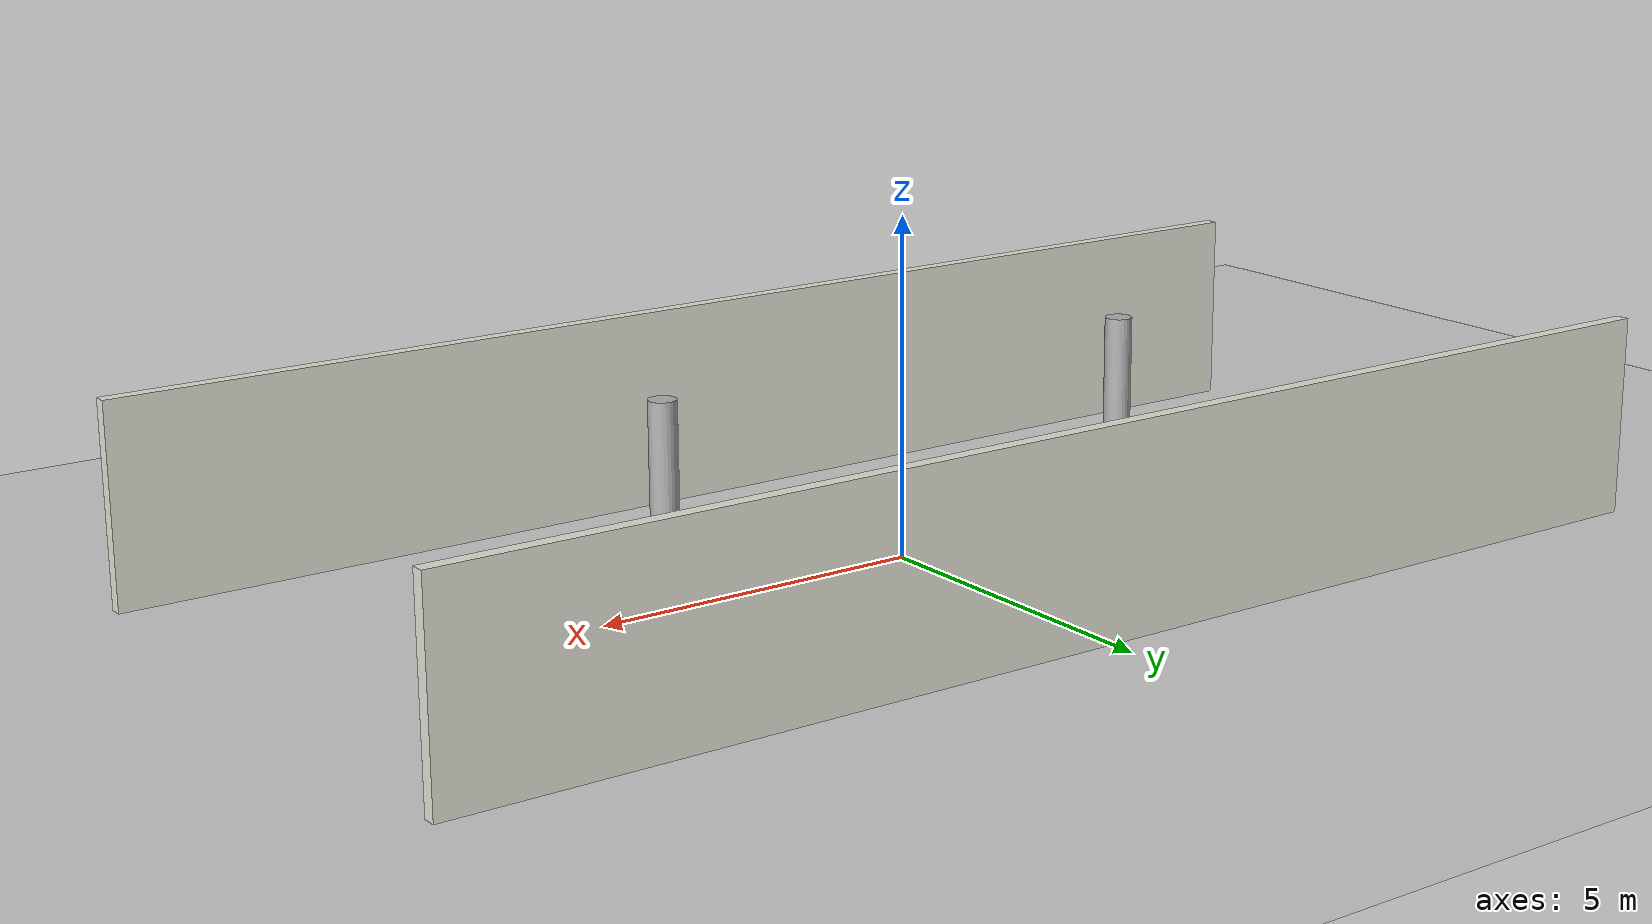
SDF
<?xml version="1.0" ?>
<sdf version="1.6">
  <world name="indoor_hall">
    <physics type="ode">
      <max_step_size>0.001</max_step_size>
      <real_time_factor>1.0</real_time_factor>
      <real_time_update_rate>1000</real_time_update_rate>
    </physics>

    <include><uri>model://sun</uri></include>
    <include><uri>model://ground_plane</uri></include>

    <!-- Hallway walls -->
    <model name="wall_north"><static>true</static>
      <pose>0 4.5 1.5 0 0 0</pose>
      <link name="link">
        <collision name="c"><geometry><box><size>20 0.2 3</size></box></geometry></collision>
        <visual name="v"><geometry><box><size>20 0.2 3</size></box></geometry>
          <material><ambient>0.9 0.9 0.85 1</ambient></material></visual>
      </link>
    </model>

    <model name="wall_south"><static>true</static>
      <pose>0 -4.5 1.5 0 0 0</pose>
      <link name="link">
        <collision name="c"><geometry><box><size>20 0.2 3</size></box></geometry></collision>
        <visual name="v"><geometry><box><size>20 0.2 3</size></box></geometry>
          <material><ambient>0.9 0.9 0.85 1</ambient></material></visual>
      </link>
    </model>

    <!-- Columns -->
    <model name="column_1"><static>true</static>
      <pose>4 0 1.5 0 0 0</pose>
      <link name="link">
        <collision name="c"><geometry><cylinder><radius>0.2</radius><length>3</length></cylinder></geometry></collision>
        <visual name="v"><geometry><cylinder><radius>0.2</radius><length>3</length></cylinder></geometry>
          <material><ambient>0.7 0.7 0.7 1</ambient></material></visual>
      </link>
    </model>

    <model name="column_2"><static>true</static>
      <pose>-4 0 1.5 0 0 0</pose>
      <link name="link">
        <collision name="c"><geometry><cylinder><radius>0.2</radius><length>3</length></cylinder></geometry></collision>
        <visual name="v"><geometry><cylinder><radius>0.2</radius><length>3</length></cylinder></geometry>
          <material><ambient>0.7 0.7 0.7 1</ambient></material></visual>
      </link>
    </model>
  </world>
</sdf>
